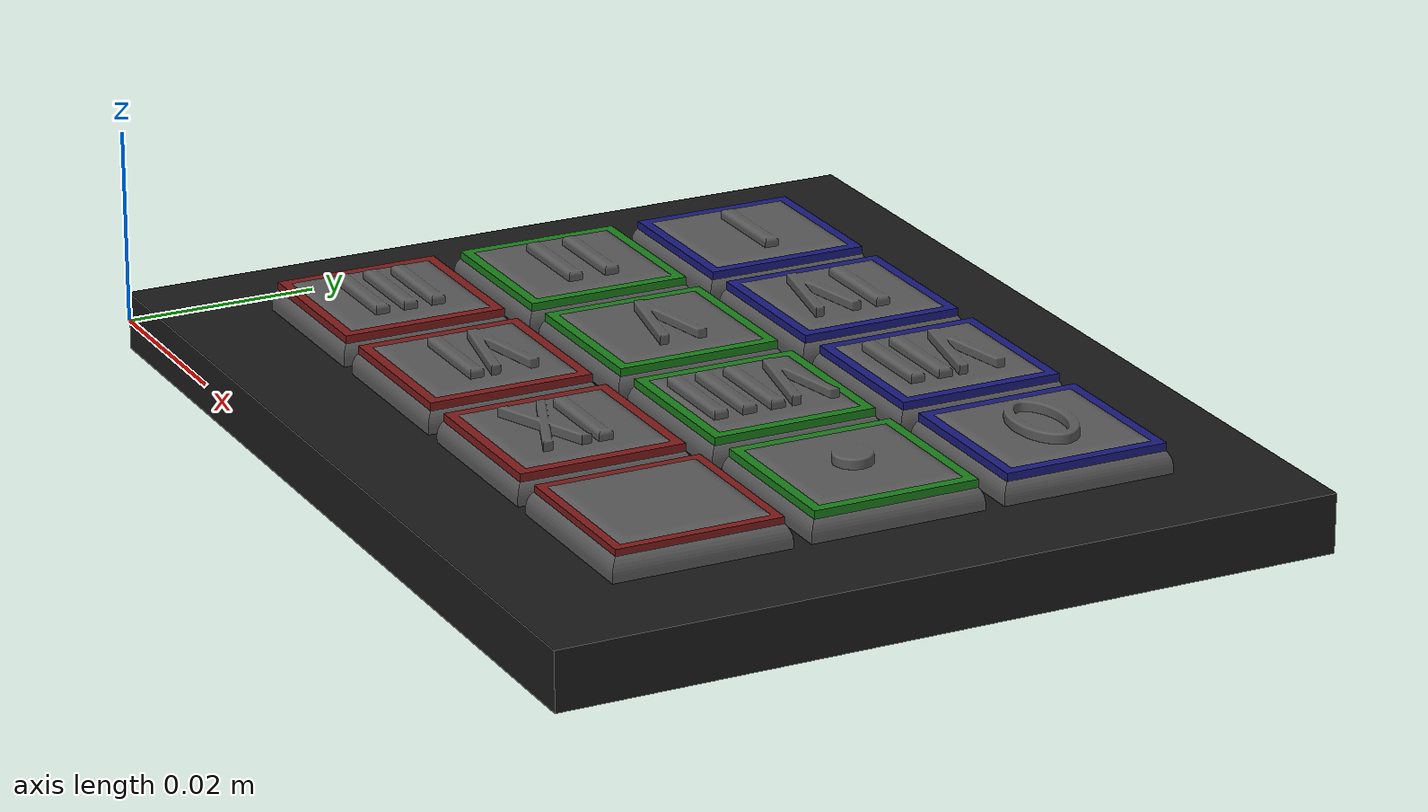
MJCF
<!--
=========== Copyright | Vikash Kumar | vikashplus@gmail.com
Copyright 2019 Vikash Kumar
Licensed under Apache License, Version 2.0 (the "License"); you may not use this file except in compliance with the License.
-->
<mujoco model="numpad-v200">

    <include file="assets/dependencies.xml"/>

    <worldbody>
        <light pos=".05 .04 .1"/>
        <include file="assets/chain.xml"/>
    </worldbody>
</mujoco>

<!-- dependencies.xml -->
<mujocoinclude>
    <compiler meshdir="meshes"/>

    <default>
        <default class="numpad">
            <geom rgba=".35 .35 .35 1" type="box"  size=".0085 .0085 .003" contype="1" conaffinity="0" group="0"/>
            <joint type="slide" axis="0 0 1" limited="true" range="0 0.005" stiffness="1" springref=".1" damping="1"/>
            <default class="viz">
                <geom type="mesh" contype="0" conaffinity="0" group="1" pos="0 0 .0002"/>
            </default>
        </default>
    </default>

    <asset>
        <mesh name="Key"   file="Key.stl" scale=".00101 .00101 .00101"/>
        <mesh name="Key1"  file="Key1.stl" scale=".001 .001 .001"/>
        <mesh name="Key2"  file="Key2.stl" scale=".001 .001 .001"/>
        <mesh name="Key3"  file="Key3.stl" scale=".001 .001 .001"/>
        <mesh name="Key4"  file="Key4.stl" scale=".001 .001 .001"/>
        <mesh name="Key5"  file="Key5.stl" scale=".001 .001 .001"/>
        <mesh name="Key6"  file="Key6.stl" scale=".001 .001 .001"/>
        <mesh name="Key7"  file="Key7.stl" scale=".001 .001 .001"/>
        <mesh name="Key8"  file="Key8.stl" scale=".001 .001 .001"/>
        <mesh name="Key9"  file="Key9.stl" scale=".001 .001 .001"/>
        <mesh name="Key0"  file="Key0.stl" scale=".001 .001 .001"/>
        <mesh name="point" file="point.stl" scale=".001 .001 .001"/>
    </asset>
</mujocoinclude>

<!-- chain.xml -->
<mujocoinclude>
    <body name="Keyboard" pos="0 0 0" childclass="numpad">

        <geom name="Keyboard_base" type="box" pos=".05 .04 0" size=".05 .04 .003" rgba=".1 .1 .1 1" contype="1" conaffinity="1" class="viz"/>
        <body name="Key1" pos="0.02 0.06 .003">
            <geom name="C_Key1" rgba=".1 .1 .5 1"/>
            <geom name="V_Key1" mesh="Key1" class="viz"/>
            <joint name="Key1"/>
        </body>
        <body name="Key2" pos="0.02 0.04 .003">
            <geom name="C_Key2" rgba=".1 .5 .1 1"/>
            <geom name="V_Key2" mesh="Key2" class="viz"/>
            <joint name="Key2"/>
        </body>
        <body name="Key3" pos="0.02 0.02 .003">
            <geom name="C_Key3" rgba=".5 .1 .1 1"/>
            <geom name="V_Key3" mesh="Key3" class="viz"/>
            <joint name="Key3"/>
        </body>
        <body name="Key4" pos="0.04 0.06 .003">
            <geom name="C_Key4" rgba=".1 .1 .5 1"/>
            <geom name="V_Key4" mesh="Key4" class="viz"/>
            <joint name="Key4"/>
        </body>
        <body name="Key5" pos="0.04 0.04 .003">
            <geom name="C_Key5" rgba=".1 .5 .1 1"/>
            <geom name="V_Key5" mesh="Key5" class="viz"/>
            <joint name="Key5"/>
        </body>
        <body name="Key6" pos="0.04 0.02 .003">
            <geom name="C_Key6" rgba=".5 .1 .1 1"/>
            <geom name="V_Key6" mesh="Key6" class="viz"/>
            <joint name="Key6"/>
        </body>
        <body name="Key7" pos="0.06 0.06 .003">
            <geom name="C_Key7" rgba=".1 .1 .5 1"/>
            <geom name="V_Key7" mesh="Key7" class="viz"/>
            <joint name="Key7"/>
        </body>
        <body name="Key8" pos="0.06 0.04 .003">
            <geom name="C_Key8" rgba=".1 .5 .1 1"/>
            <geom name="V_Key8" mesh="Key8" class="viz"/>
            <joint name="Key8"/>
        </body>
        <body name="Key9" pos="0.06 0.02 .003">
            <geom name="C_Key9" rgba=".5 .1 .1 1"/>
            <geom name="V_Key9" mesh="Key9" class="viz"/>
            <joint name="Key9"/>
        </body>
        <body name="Key10" pos="0.08 0.06 .003">
            <geom name="C_Key10" rgba=".1 .1 .5 1"/>
            <geom name="V_Key10" mesh="Key0" class="viz"/>
            <joint name="Key10"/>
        </body>
        <body name="Key11" pos="0.08 0.04 .003">
            <geom name="C_Key11" rgba=".1 .5 .1 1"/>
            <geom name="V_Key11" mesh="point" class="viz"/>
            <joint name="Key11" type="slide"/>
        </body>
        <body name="Key12" pos="0.08 0.02 .003">
            <geom name="C_Key12" rgba=".5 .1 .1 1"/>
            <geom name="V_Key12" mesh="Key" class="viz"/>
            <joint name="Key12"/>
        </body>
    </body>
</mujocoinclude>
